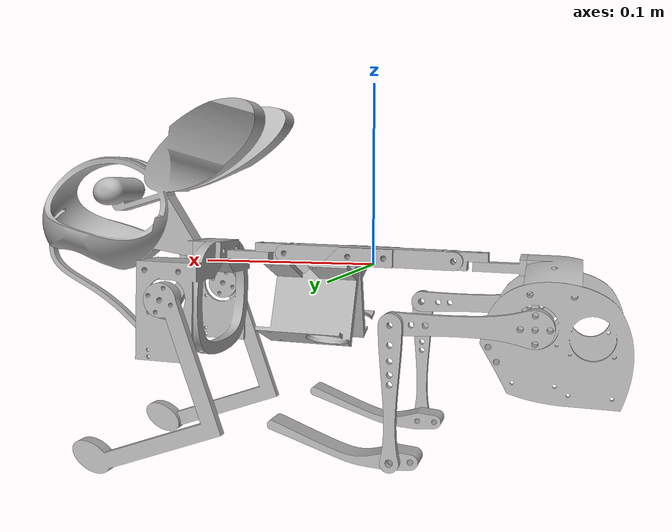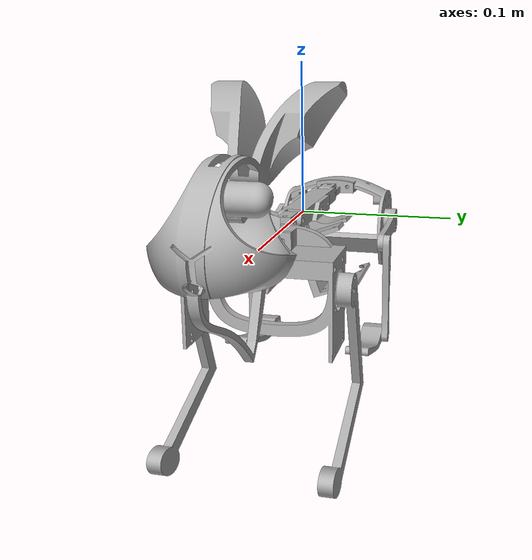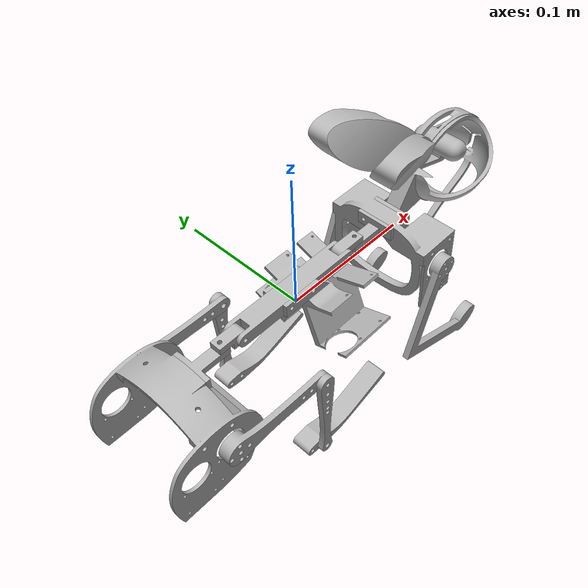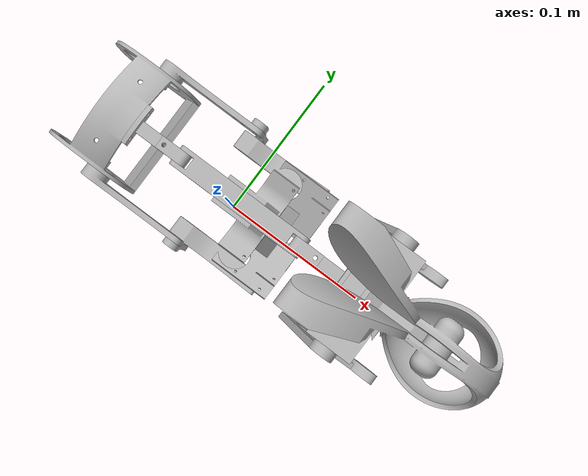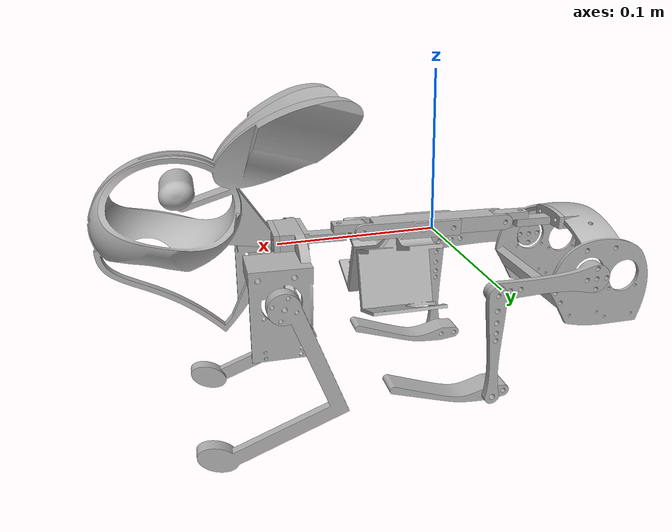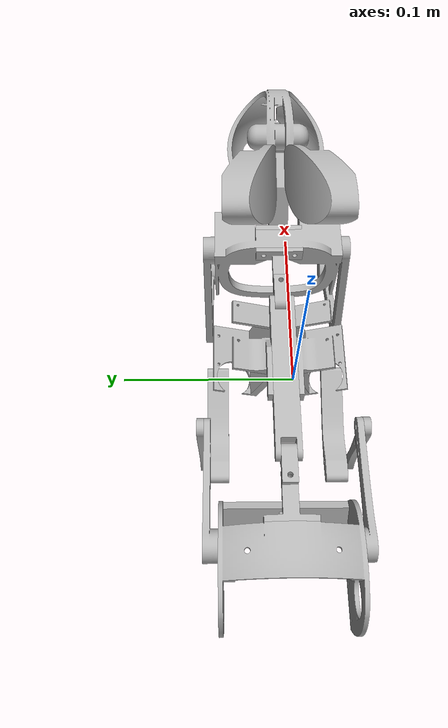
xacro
<?xml version="1.0" ?>
<robot name="_Compleat_Bunny_replica_v2" xmlns:xacro="http://www.ros.org/wiki/xacro">

<xacro:include filename="$(find _Compleat_Bunny_replica_v2_light_v5)/urdf/materials.xacro" />
<xacro:include filename="$(find _Compleat_Bunny_replica_v2_light_v5)/urdf/_Compleat_Bunny_replica_v2.trans" />
<xacro:include filename="$(find _Compleat_Bunny_replica_v2_light_v5)/urdf/_Compleat_Bunny_replica_v2.gazebo" />
<link name="base_link">
  <inertial>
    <origin xyz="0.0014417431249774725 0.004999997983679286 0.004755497739543159" rpy="0 0 0"/>
    <mass value="0.01"/>
    <inertia ixx="3e-06" iyy="7.3e-05" izz="7.4e-05" ixy="0.0" iyz="-0.0" ixz="-2e-06"/>
  </inertial>
  <visual>
    <origin xyz="0 0 0" rpy="0 0 0"/>
    <geometry>
      <mesh filename="package://_Compleat_Bunny_replica_v2_light_v5/meshes/base_link.stl" scale="0.001 0.001 0.001"/>
    </geometry>
    <material name="silver"/>
  </visual>
  <collision>
    <origin xyz="0 0 0" rpy="0 0 0"/>
    <geometry>
      <mesh filename="package://_Compleat_Bunny_replica_v2_light_v5/meshes/base_link_3dless_com_simplified.stl" scale="0.001 0.001 0.001"/>
    </geometry>
  </collision>
</link>

<link name="Spine_joint_Component3_v1_1">
  <inertial>
    <origin xyz="-0.005203805342504343 0.004499997972388137 0.0006915506733851796" rpy="0 0 0"/>
    <mass value="0.01"/>
    <inertia ixx="0.0" iyy="0.0" izz="0.0" ixy="-0.0" iyz="0.0" ixz="0.0"/>
  </inertial>
  <visual>
    <origin xyz="0.046041 -0.0005 -0.003472" rpy="0 0 0"/>
    <geometry>
      <mesh filename="package://_Compleat_Bunny_replica_v2_light_v5/meshes/Spine_joint_Component3_v1_1.stl" scale="0.001 0.001 0.001"/>
    </geometry>
    <material name="silver"/>
  </visual>
  <collision>
    <origin xyz="0.046041 -0.0005 -0.003472" rpy="0 0 0"/>
    <geometry>
      <mesh filename="package://_Compleat_Bunny_replica_v2_light_v5/meshes/Spine_joint_Component3_v1_1_3dless_com_simplified.stl" scale="0.001 0.001 0.001"/>
    </geometry>
  </collision>
</link>

<link name="Spine_joint_Component5_v1_1">
  <inertial>
    <origin xyz="0.005159288590564685 0.0044999979723882744 0.00097270733531788" rpy="0 0 0"/>
    <mass value="0.01"/>
    <inertia ixx="0.0" iyy="0.0" izz="0.0" ixy="0.0" iyz="0.0" ixz="-0.0"/>
  </inertial>
  <visual>
    <origin xyz="-0.048924 -0.0005 -0.006039" rpy="0 0 0"/>
    <geometry>
      <mesh filename="package://_Compleat_Bunny_replica_v2_light_v5/meshes/Spine_joint_Component5_v1_1.stl" scale="0.001 0.001 0.001"/>
    </geometry>
    <material name="silver"/>
  </visual>
  <collision>
    <origin xyz="-0.048924 -0.0005 -0.006039" rpy="0 0 0"/>
    <geometry>
      <mesh filename="package://_Compleat_Bunny_replica_v2_light_v5/meshes/Spine_joint_Component5_v1_1_3dless_com_simplified.stl" scale="0.001 0.001 0.001"/>
    </geometry>
  </collision>
</link>

<link name="Spine_joint_Component1_v1_1">
  <inertial>
    <origin xyz="-0.015221625191204895 -3.115991847046917e-07 -0.0018911922443372105" rpy="0 0 0"/>
    <mass value="0.01"/>
    <inertia ixx="1e-06" iyy="1e-06" izz="2e-06" ixy="-0.0" iyz="0.0" ixz="0.0"/>
  </inertial>
  <visual>
    <origin xyz="0.060036 -0.005 -0.003093" rpy="0 0 0"/>
    <geometry>
      <mesh filename="package://_Compleat_Bunny_replica_v2_light_v5/meshes/Spine_joint_Component1_v1_1.stl" scale="0.001 0.001 0.001"/>
    </geometry>
    <material name="silver"/>
  </visual>
  <collision>
    <origin xyz="0.060036 -0.005 -0.003093" rpy="0 0 0"/>
    <geometry>
      <mesh filename="package://_Compleat_Bunny_replica_v2_light_v5/meshes/Spine_joint_Component1_v1_1_3dless_com_simplified.stl" scale="0.001 0.001 0.001"/>
    </geometry>
  </collision>
</link>

<link name="Spine_joint_Component6_v1_1">
  <inertial>
    <origin xyz="0.0148668285405648 -1.997325344178791e-09 -0.0009990335663582614" rpy="0 0 0"/>
    <mass value="0.01"/>
    <inertia ixx="1e-06" iyy="1e-06" izz="2e-06" ixy="0.0" iyz="-0.0" ixz="-0.0"/>
  </inertial>
  <visual>
    <origin xyz="-0.062919 -0.005 -0.006418" rpy="0 0 0"/>
    <geometry>
      <mesh filename="package://_Compleat_Bunny_replica_v2_light_v5/meshes/Spine_joint_Component6_v1_1.stl" scale="0.001 0.001 0.001"/>
    </geometry>
    <material name="silver"/>
  </visual>
  <collision>
    <origin xyz="-0.062919 -0.005 -0.006418" rpy="0 0 0"/>
    <geometry>
      <mesh filename="package://_Compleat_Bunny_replica_v2_light_v5/meshes/Spine_joint_Component6_v1_1_3dless_com_simplified.stl" scale="0.001 0.001 0.001"/>
    </geometry>
  </collision>
</link>

<link name="Top_v2_1">
  <inertial>
    <origin xyz="0.01546951348298585 0.0098937982542903 -0.023739664442288033" rpy="0 0 0"/>
    <mass value="0.2"/>
    <inertia ixx="0.000479" iyy="0.000189" izz="0.00037" ixy="1e-06" iyz="-1e-06" ixz="7e-06"/>
  </inertial>
  <visual>
    <origin xyz="-0.086911 0.005 -0.007067" rpy="0 0 0"/>
    <geometry>
      <mesh filename="package://_Compleat_Bunny_replica_v2_light_v5/meshes/Top_v2_1.stl" scale="0.001 0.001 0.001"/>
    </geometry>
    <material name="silver"/>
  </visual>
  <collision>
    <origin xyz="-0.086911 0.005 -0.007067" rpy="0 0 0"/>
    <geometry>
      <mesh filename="package://_Compleat_Bunny_replica_v2_light_v5/meshes/Top_v2_1_3dless_com_simplified.stl" scale="0.001 0.001 0.001"/>
    </geometry>
  </collision>
</link>

<link name="Head_v1_1">
  <inertial>
    <origin xyz="0.011934149175224798 0.009988927947094224 0.04293184406752427" rpy="0 0 0"/>
    <mass value="0.1"/>
    <inertia ixx="0.000781" iyy="0.001593" izz="0.001212" ixy="0.0" iyz="-0.0" ixz="0.000526"/>
  </inertial>
  <visual>
    <origin xyz="-0.100905 0.005 -0.007445" rpy="0 0 0"/>
    <geometry>
      <mesh filename="package://_Compleat_Bunny_replica_v2_light_v5/meshes/Head_v1_1.stl" scale="0.001 0.001 0.001"/>
    </geometry>
    <material name="silver"/>
  </visual>
  <collision>
    <origin xyz="-0.100905 0.005 -0.007445" rpy="0 0 0"/>
    <geometry>
      <mesh filename="package://_Compleat_Bunny_replica_v2_light_v5/meshes/Head_v1_1_3dless_com_simplified.stl" scale="0.001 0.001 0.001"/>
    </geometry>
  </collision>
</link>

<link name="belly_right_v3_1">
  <inertial>
    <origin xyz="0.036975085192111144 -0.010874582640070355 -0.02408903382906449" rpy="0 0 0"/>
    <mass value="0.125"/>
    <inertia ixx="5.2e-05" iyy="7.2e-05" izz="5.6e-05" ixy="4e-06" iyz="-9e-06" ixz="8e-06"/>
  </inertial>
  <visual>
    <origin xyz="0.008555 0.0025 -0.004485" rpy="0 0 0"/>
    <geometry>
      <mesh filename="package://_Compleat_Bunny_replica_v2_light_v5/meshes/belly_right_v3_1.stl" scale="0.001 0.001 0.001"/>
    </geometry>
    <material name="silver"/>
  </visual>
  <collision>
    <origin xyz="0.008555 0.0025 -0.004485" rpy="0 0 0"/>
    <geometry>
      <mesh filename="package://_Compleat_Bunny_replica_v2_light_v5/meshes/belly_right_v3_1_3dless_com_simplified.stl" scale="0.001 0.001 0.001"/>
    </geometry>
  </collision>
</link>

<link name="belly_left_v3_1">
  <inertial>
    <origin xyz="0.036975085289092824 0.010874579030013667 -0.024089033406386535" rpy="0 0 0"/>
    <mass value="0.125"/>
    <inertia ixx="5.2e-05" iyy="7.2e-05" izz="5.6e-05" ixy="-4e-06" iyz="9e-06" ixz="8e-06"/>
  </inertial>
  <visual>
    <origin xyz="0.008555 -0.0125 -0.004485" rpy="0 0 0"/>
    <geometry>
      <mesh filename="package://_Compleat_Bunny_replica_v2_light_v5/meshes/belly_left_v3_1.stl" scale="0.001 0.001 0.001"/>
    </geometry>
    <material name="silver"/>
  </visual>
  <collision>
    <origin xyz="0.008555 -0.0125 -0.004485" rpy="0 0 0"/>
    <geometry>
      <mesh filename="package://_Compleat_Bunny_replica_v2_light_v5/meshes/belly_left_v3_1_3dless_com_simplified.stl" scale="0.001 0.001 0.001"/>
    </geometry>
  </collision>
</link>

<link name="Bunny_Bottom_Leg_v1_1">
  <inertial>
    <origin xyz="0.005000069062520374 0.004864946865656555 -0.05395632641844571" rpy="0 0 0"/>
    <mass value="0.009"/>
    <inertia ixx="0.0001" iyy="0.000149" izz="4.9e-05" ixy="1e-06" iyz="0.0" ixz="3.6e-05"/>
  </inertial>
  <visual>
    <origin xyz="-0.105327 -0.047 0.01735" rpy="0 0 0"/>
    <geometry>
      <mesh filename="package://_Compleat_Bunny_replica_v2_light_v5/meshes/Bunny_Bottom_Leg_v1_1.stl" scale="0.001 0.001 0.001"/>
    </geometry>
    <material name="silver"/>
  </visual>
  <collision>
    <origin xyz="-0.105327 -0.047 0.01735" rpy="0 0 0"/>
    <geometry>
      <mesh filename="package://_Compleat_Bunny_replica_v2_light_v5/meshes/Bunny_Bottom_Leg_v1_1.stl" scale="0.001 0.001 0.001"/>
    </geometry>
  </collision>
</link>

<link name="Bunny_Bottom_Leg_v1_Mirror__1">
  <inertial>
    <origin xyz="0.0050000690625209565 -0.004864950898295535 -0.05395632641844636" rpy="0 0 0"/>
    <mass value="0.009"/>
    <inertia ixx="0.0001" iyy="0.000149" izz="4.9e-05" ixy="-1e-06" iyz="-0.0" ixz="3.6e-05"/>
  </inertial>
  <visual>
    <origin xyz="-0.105327 0.037 0.01735" rpy="0 0 0"/>
    <geometry>
      <mesh filename="package://_Compleat_Bunny_replica_v2_light_v5/meshes/Bunny_Bottom_Leg_v1_Mirror__1.stl" scale="0.001 0.001 0.001"/>
    </geometry>
    <material name="silver"/>
  </visual>
  <collision>
    <origin xyz="-0.105327 0.037 0.01735" rpy="0 0 0"/>
    <geometry>
      <mesh filename="package://_Compleat_Bunny_replica_v2_light_v5/meshes/Bunny_Bottom_Leg_v1_Mirror__1.stl" scale="0.001 0.001 0.001"/>
    </geometry>
  </collision>
</link>

<link name="Bunny_Bottom_v2_v2_1">
  <inertial>
    <origin xyz="-0.014970948038760631 0.009744609257807284 -0.03558687983130818" rpy="0 0 0"/>
    <mass value="0.4"/>
    <inertia ixx="0.000586" iyy="0.000354" izz="0.000558" ixy="0.0" iyz="-1e-06" ixz="-2.2e-05"/>
  </inertial>
  <visual>
    <origin xyz="0.084527 0.005 -0.002431" rpy="0 0 0"/>
    <geometry>
      <mesh filename="package://_Compleat_Bunny_replica_v2_light_v5/meshes/Bunny_Bottom_v2_v2_1.stl" scale="0.001 0.001 0.001"/>
    </geometry>
    <material name="silver"/>
  </visual>
  <collision>
    <origin xyz="0.084527 0.005 -0.002431" rpy="0 0 0"/>
    <geometry>
      <mesh filename="package://_Compleat_Bunny_replica_v2_light_v5/meshes/Bunny_Bottom_v2_v2_1_3dless_com_simplified.stl" scale="0.001 0.001 0.001"/>
    </geometry>
  </collision>
</link>

<link name="LegPart2_v1_1">
  <inertial>
    <origin xyz="0.022876578249581392 0.005939321398918514 -2.0360427089444189e-07" rpy="0 0 0"/>
    <mass value="0.001"/>
    <inertia ixx="1e-06" iyy="2.5e-05" izz="2.5e-05" ixy="-1e-06" iyz="0.0" ixz="-0.0"/>
  </inertial>
  <visual>
    <origin xyz="0.09078 -0.0445 0.025296" rpy="0 0 0"/>
    <geometry>
      <mesh filename="package://_Compleat_Bunny_replica_v2_light_v5/meshes/LegPart2_v1_1.stl" scale="0.001 0.001 0.001"/>
    </geometry>
    <material name="silver"/>
  </visual>
  <collision>
    <origin xyz="0.09078 -0.0445 0.025296" rpy="0 0 0"/>
    <geometry>
      <mesh filename="package://_Compleat_Bunny_replica_v2_light_v5/meshes/LegPart2_v1_1_3dless_com_simplified.stl" scale="0.001 0.001 0.001"/>
    </geometry>
  </collision>
</link>

<link name="LegPart4_v1_1">
  <inertial>
    <origin xyz="3.708903543279962e-07 0.0022499969920656768 -0.030667347115594483" rpy="0 0 0"/>
    <mass value="0.001"/>
    <inertia ixx="1.3e-05" iyy="1.3e-05" izz="0.0" ixy="0.0" iyz="0.0" ixz="-0.0"/>
  </inertial>
  <visual>
    <origin xyz="0.02078 -0.0535 0.025296" rpy="0 0 0"/>
    <geometry>
      <mesh filename="package://_Compleat_Bunny_replica_v2_light_v5/meshes/LegPart4_v1_1.stl" scale="0.001 0.001 0.001"/>
    </geometry>
    <material name="silver"/>
  </visual>
  <collision>
    <origin xyz="0.02078 -0.0535 0.025296" rpy="0 0 0"/>
    <geometry>
      <mesh filename="package://_Compleat_Bunny_replica_v2_light_v5/meshes/LegPart4_v1_1_3dless_com_simplified.stl" scale="0.001 0.001 0.001"/>
    </geometry>
  </collision>
</link>

<link name="LegPartFoot_v1_1">
  <inertial>
    <origin xyz="0.02133176156704069 -0.007500002219984758 0.002975322644036854" rpy="0 0 0"/>
    <mass value="0.01"/>
    <inertia ixx="2e-06" iyy="3e-05" izz="2.9e-05" ixy="0.0" iyz="0.0" ixz="-5e-06"/>
  </inertial>
  <visual>
    <origin xyz="0.02078 -0.0535 0.095296" rpy="0 0 0"/>
    <geometry>
      <mesh filename="package://_Compleat_Bunny_replica_v2_light_v5/meshes/LegPartFoot_v1_1.stl" scale="0.001 0.001 0.001"/>
    </geometry>
    <material name="silver"/>
  </visual>
  <collision>
    <origin xyz="0.02078 -0.0535 0.095296" rpy="0 0 0"/>
    <geometry>
      <mesh filename="package://_Compleat_Bunny_replica_v2_light_v5/meshes/LegPartFoot_v1_1.stl" scale="0.001 0.001 0.001"/>
    </geometry>
  </collision>
</link>

<link name="LegPart2_v1__1__1">
  <inertial>
    <origin xyz="0.02287657824958156 -0.005939329464200636 -2.036042720844622e-07" rpy="0 0 0"/>
    <mass value="0.001"/>
    <inertia ixx="1e-06" iyy="2.5e-05" izz="2.5e-05" ixy="1e-06" iyz="-0.0" ixz="-0.0"/>
  </inertial>
  <visual>
    <origin xyz="0.09078 0.0345 0.025296" rpy="0 0 0"/>
    <geometry>
      <mesh filename="package://_Compleat_Bunny_replica_v2_light_v5/meshes/LegPart2_v1__1__1.stl" scale="0.001 0.001 0.001"/>
    </geometry>
    <material name="silver"/>
  </visual>
  <collision>
    <origin xyz="0.09078 0.0345 0.025296" rpy="0 0 0"/>
    <geometry>
      <mesh filename="package://_Compleat_Bunny_replica_v2_light_v5/meshes/LegPart2_v1__1__1_3dless_com_simplified.stl" scale="0.001 0.001 0.001"/>
    </geometry>
  </collision>
</link>

<link name="LegPart4_v1__1__1">
  <inertial>
    <origin xyz="3.708903546159603e-07 -0.0022500050573467795 -0.030667347115595746" rpy="0 0 0"/>
    <mass value="0.001"/>
    <inertia ixx="1.3e-05" iyy="1.3e-05" izz="0.0" ixy="-0.0" iyz="-0.0" ixz="-0.0"/>
  </inertial>
  <visual>
    <origin xyz="0.02078 0.0435 0.025296" rpy="0 0 0"/>
    <geometry>
      <mesh filename="package://_Compleat_Bunny_replica_v2_light_v5/meshes/LegPart4_v1__1__1.stl" scale="0.001 0.001 0.001"/>
    </geometry>
    <material name="silver"/>
  </visual>
  <collision>
    <origin xyz="0.02078 0.0435 0.025296" rpy="0 0 0"/>
    <geometry>
      <mesh filename="package://_Compleat_Bunny_replica_v2_light_v5/meshes/LegPart4_v1__1__1_3dless_com_simplified.stl" scale="0.001 0.001 0.001"/>
    </geometry>
  </collision>
</link>

<link name="LegPartFoot_v1__1__1">
  <inertial>
    <origin xyz="0.02133176156704094 0.007499994154704738 0.002975322644035952" rpy="0 0 0"/>
    <mass value="0.01"/>
    <inertia ixx="2e-06" iyy="3e-05" izz="2.9e-05" ixy="-0.0" iyz="-0.0" ixz="-5e-06"/>
  </inertial>
  <visual>
    <origin xyz="0.02078 0.0435 0.095296" rpy="0 0 0"/>
    <geometry>
      <mesh filename="package://_Compleat_Bunny_replica_v2_light_v5/meshes/LegPartFoot_v1__1__1.stl" scale="0.001 0.001 0.001"/>
    </geometry>
    <material name="silver"/>
  </visual>
  <collision>
    <origin xyz="0.02078 0.0435 0.095296" rpy="0 0 0"/>
    <geometry>
      <mesh filename="package://_Compleat_Bunny_replica_v2_light_v5/meshes/LegPartFoot_v1__1__1.stl" scale="0.001 0.001 0.001"/>
    </geometry>
  </collision>
</link>

<joint name="Revolute 38" type="revolute">
  <origin xyz="-0.046041 0.0005 0.003472" rpy="0 0 0"/>
  <parent link="base_link"/>
  <child link="Spine_joint_Component3_v1_1"/>
  <axis xyz="-0.0 1.0 0.0"/>
  <limit upper="0.2" lower="-0.45" effort="100" velocity="100"/>
</joint>

<joint name="Revolute 39" type="revolute">
  <origin xyz="0.048924 0.0005 0.006039" rpy="0 0 0"/>
  <parent link="base_link"/>
  <child link="Spine_joint_Component5_v1_1"/>
  <axis xyz="-0.0 1.0 0.0"/>
  <limit upper="0.45" lower="-0.2" effort="100" velocity="100"/>
</joint>

<joint name="Revolute 40" type="revolute">
  <origin xyz="-0.013995 0.0045 -0.000379" rpy="0 0 0"/>
  <parent link="Spine_joint_Component3_v1_1"/>
  <child link="Spine_joint_Component1_v1_1"/>
  <axis xyz="-0.027031 -0.0 0.999635"/>
  <limit upper="0.523599" lower="-0.523599" effort="100" velocity="100"/>
</joint>

<joint name="Revolute 41" type="revolute">
  <origin xyz="0.013995 0.0045 0.000379" rpy="0 0 0"/>
  <parent link="Spine_joint_Component5_v1_1"/>
  <child link="Spine_joint_Component6_v1_1"/>
  <axis xyz="-0.027031 -0.0 0.999635"/>
  <limit upper="0.523599" lower="-0.523599" effort="100" velocity="100"/>
</joint>

<joint name="Rigid 42" type="fixed">
  <origin xyz="0.023992 -0.01 0.000649" rpy="0 0 0"/>
  <parent link="Spine_joint_Component6_v1_1"/>
  <child link="Top_v2_1"/>
</joint>

<joint name="Rigid 43" type="fixed">
  <origin xyz="0.013994 0.0 0.000378" rpy="0 0 0"/>
  <parent link="Top_v2_1"/>
  <child link="Head_v1_1"/>
</joint>

<joint name="Rigid 46" type="fixed">
  <origin xyz="-0.008555 -0.0025 0.004485" rpy="0 0 0"/>
  <parent link="base_link"/>
  <child link="belly_right_v3_1"/>
</joint>

<joint name="Rigid 47" type="fixed">
  <origin xyz="-0.008555 0.0125 0.004485" rpy="0 0 0"/>
  <parent link="base_link"/>
  <child link="belly_left_v3_1"/>
</joint>

<joint name="Revolute 48" type="revolute">
  <origin xyz="0.018416 0.052 -0.024417" rpy="0 0 0"/>
  <parent link="Top_v2_1"/>
  <child link="Bunny_Bottom_Leg_v1_1"/>
  <axis xyz="-0.0 1.0 0.0"/>
  <limit upper="0.872665" lower="-0.872665" effort="100" velocity="100"/>
</joint>

<joint name="Revolute 49" type="revolute">
  <origin xyz="0.018416 -0.032 -0.024417" rpy="0 0 0"/>
  <parent link="Top_v2_1"/>
  <child link="Bunny_Bottom_Leg_v1_Mirror__1"/>
  <axis xyz="-0.0 1.0 0.0"/>
  <limit upper="0.872665" lower="-0.872665" effort="100" velocity="100"/>
</joint>

<joint name="Rigid 50" type="fixed">
  <origin xyz="-0.024491 -0.01 -0.000662" rpy="0 0 0"/>
  <parent link="Spine_joint_Component1_v1_1"/>
  <child link="Bunny_Bottom_v2_v2_1"/>
</joint>

<joint name="Revolute 51" type="revolute">
  <origin xyz="-0.006253 0.0495 -0.027727" rpy="0 0 0"/>
  <parent link="Bunny_Bottom_v2_v2_1"/>
  <child link="LegPart2_v1_1"/>
  <axis xyz="-0.0 -1.0 -0.0"/>
  <limit upper="0.610865" lower="-2.617994" effort="100" velocity="100"/>
</joint>

<joint name="Revolute 52" type="revolute">
  <origin xyz="0.07 0.009 0.0" rpy="0 0 0"/>
  <parent link="LegPart2_v1_1"/>
  <child link="LegPart4_v1_1"/>
  <axis xyz="-0.0 -1.0 -0.0"/>
  <limit upper="1.134464" lower="-1.22173" effort="100" velocity="100"/>
</joint>

<joint name="Revolute 53" type="revolute">
  <origin xyz="0.0 0.0 -0.07" rpy="0 0 0"/>
  <parent link="LegPart4_v1_1"/>
  <child link="LegPartFoot_v1_1"/>
  <axis xyz="-0.0 -1.0 -0.0"/>
  <limit upper="0.785398" lower="-1.047198" effort="100" velocity="100"/>
</joint>

<joint name="Revolute 54" type="revolute">
  <origin xyz="-0.006253 -0.0295 -0.027727" rpy="0 0 0"/>
  <parent link="Bunny_Bottom_v2_v2_1"/>
  <child link="LegPart2_v1__1__1"/>
  <axis xyz="0.0 -1.0 0.0"/>
  <limit upper="0.610865" lower="-2.617994" effort="100" velocity="100"/>
</joint>

<joint name="Revolute 55" type="revolute">
  <origin xyz="0.07 -0.009 0.0" rpy="0 0 0"/>
  <parent link="LegPart2_v1__1__1"/>
  <child link="LegPart4_v1__1__1"/>
  <axis xyz="-0.0 1.0 -0.0"/>
  <limit upper="1.134464" lower="-1.22173" effort="100" velocity="100"/>
</joint>

<joint name="Revolute 56" type="revolute">
  <origin xyz="0.0 0.0 -0.07" rpy="0 0 0"/>
  <parent link="LegPart4_v1__1__1"/>
  <child link="LegPartFoot_v1__1__1"/>
  <axis xyz="0.0 -1.0 0.0"/>
  <limit upper="0.785398" lower="-1.134464" effort="100" velocity="100"/>
</joint>

</robot>

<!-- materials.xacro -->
<robot name="_Compleat_Bunny_replica_v2" xmlns:xacro="http://www.ros.org/wiki/xacro" >

<material name="silver">
  <color rgba="0.700 0.700 0.700 1.000"/>
</material>

</robot>

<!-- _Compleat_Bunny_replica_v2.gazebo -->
<robot name="_Compleat_Bunny_replica_v2" xmlns:xacro="http://www.ros.org/wiki/xacro" >

<xacro:property name="body_color" value="Gazebo/Silver" />

<gazebo>
  <plugin name="control" filename="libgazebo_ros_control.so"/>
</gazebo>
<gazebo reference="base_link">
  <material>${body_color}</material>
  <mu1>0.2</mu1>
  <mu2>0.2</mu2>
  <selfCollide>true</selfCollide>
  <gravity>true</gravity>
</gazebo>

<gazebo reference="Spine_joint_Component3_v1_1">
  <material>${body_color}</material>
  <mu1>0.2</mu1>
  <mu2>0.2</mu2>
  <selfCollide>true</selfCollide>
</gazebo>

<gazebo reference="Spine_joint_Component5_v1_1">
  <material>${body_color}</material>
  <mu1>0.2</mu1>
  <mu2>0.2</mu2>
  <selfCollide>true</selfCollide>
</gazebo>

<gazebo reference="Spine_joint_Component1_v1_1">
  <material>${body_color}</material>
  <mu1>0.2</mu1>
  <mu2>0.2</mu2>
  <selfCollide>true</selfCollide>
</gazebo>

<gazebo reference="Spine_joint_Component6_v1_1">
  <material>${body_color}</material>
  <mu1>0.2</mu1>
  <mu2>0.2</mu2>
  <selfCollide>true</selfCollide>
</gazebo>

<gazebo reference="Top_v2_1">
  <material>${body_color}</material>
  <mu1>0.2</mu1>
  <mu2>0.2</mu2>
  <selfCollide>true</selfCollide>
</gazebo>

<gazebo reference="Head_v1_1">
  <material>${body_color}</material>
  <mu1>0.2</mu1>
  <mu2>0.2</mu2>
  <selfCollide>true</selfCollide>
</gazebo>

<gazebo reference="belly_right_v3_1">
  <material>${body_color}</material>
  <mu1>0.2</mu1>
  <mu2>0.2</mu2>
  <selfCollide>true</selfCollide>
</gazebo>

<gazebo reference="belly_left_v3_1">
  <material>${body_color}</material>
  <mu1>0.2</mu1>
  <mu2>0.2</mu2>
  <selfCollide>true</selfCollide>
</gazebo>

<gazebo reference="Bunny_Bottom_Leg_v1_1">
  <material>${body_color}</material>
  <mu1>0.2</mu1>
  <mu2>0.2</mu2>
  <selfCollide>true</selfCollide>
</gazebo>

<gazebo reference="Bunny_Bottom_Leg_v1_Mirror__1">
  <material>${body_color}</material>
  <mu1>0.2</mu1>
  <mu2>0.2</mu2>
  <selfCollide>true</selfCollide>
</gazebo>

<gazebo reference="Bunny_Bottom_v2_v2_1">
  <material>${body_color}</material>
  <mu1>0.2</mu1>
  <mu2>0.2</mu2>
  <selfCollide>true</selfCollide>
</gazebo>

<gazebo reference="LegPart2_v1_1">
  <material>${body_color}</material>
  <mu1>0.2</mu1>
  <mu2>0.2</mu2>
  <selfCollide>true</selfCollide>
</gazebo>

<gazebo reference="LegPart4_v1_1">
  <material>${body_color}</material>
  <mu1>0.2</mu1>
  <mu2>0.2</mu2>
  <selfCollide>true</selfCollide>
</gazebo>

<gazebo reference="LegPartFoot_v1_1">
  <material>${body_color}</material>
  <mu1>0.2</mu1>
  <mu2>0.2</mu2>
  <selfCollide>true</selfCollide>
</gazebo>

<gazebo reference="LegPart2_v1__1__1">
  <material>${body_color}</material>
  <mu1>0.2</mu1>
  <mu2>0.2</mu2>
  <selfCollide>true</selfCollide>
</gazebo>

<gazebo reference="LegPart4_v1__1__1">
  <material>${body_color}</material>
  <mu1>0.2</mu1>
  <mu2>0.2</mu2>
  <selfCollide>true</selfCollide>
</gazebo>

<gazebo reference="LegPartFoot_v1__1__1">
  <material>${body_color}</material>
  <mu1>0.2</mu1>
  <mu2>0.2</mu2>
  <selfCollide>true</selfCollide>
</gazebo>

</robot>
